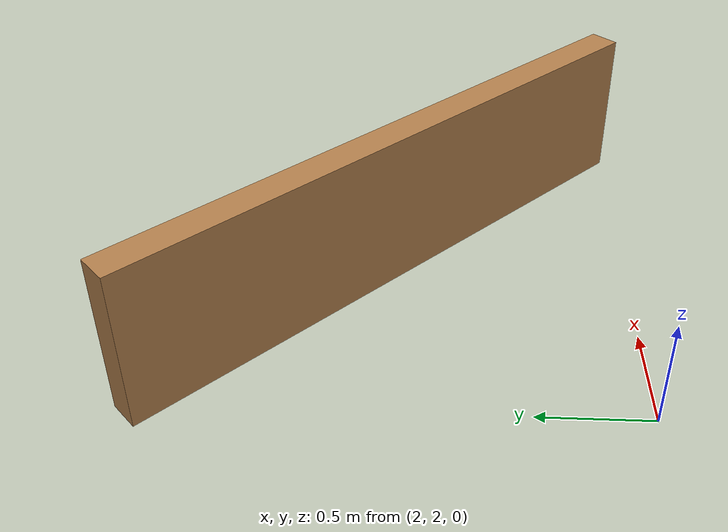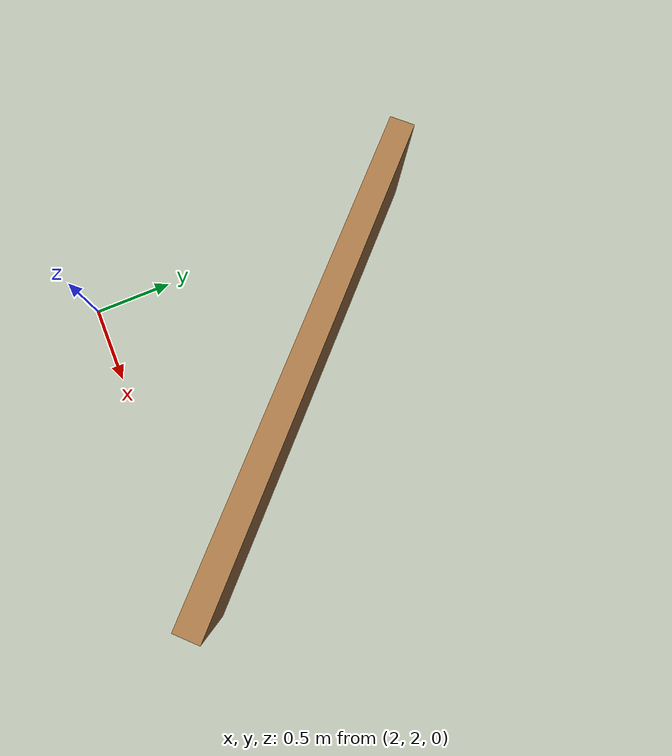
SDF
<?xml version='1.0'?>
<sdf version='1.7'>
  <model name='demo'>
    <pose>2.05103 2.10053 0 0 -0 0</pose>
    <link name='Wall_0'>
      <collision name='Wall_0_Collision'>
        <geometry>
          <box>
            <size>2.99964 0.15 0.75</size>
          </box>
        </geometry>
        <pose>0 0 0.375 0 -0 0</pose>
      </collision>
      <visual name='Wall_0_Visual'>
        <pose>0 0 0.375 0 -0 0</pose>
        <geometry>
          <box>
            <size>2.99964 0.15 0.75</size>
          </box>
        </geometry>
        <material>
          <script>
            <uri>file://media/materials/scripts/gazebo.material</uri>
            <name>Gazebo/Wood</name>
          </script>
          <ambient>1 1 1 1</ambient>
        </material>
        <meta>
          <layer>0</layer>
        </meta>
      </visual>
      <pose>0.937467 0.986967 0 0 -0 -0.785398</pose>
    </link>
    <static>1</static>
  </model>
</sdf>
